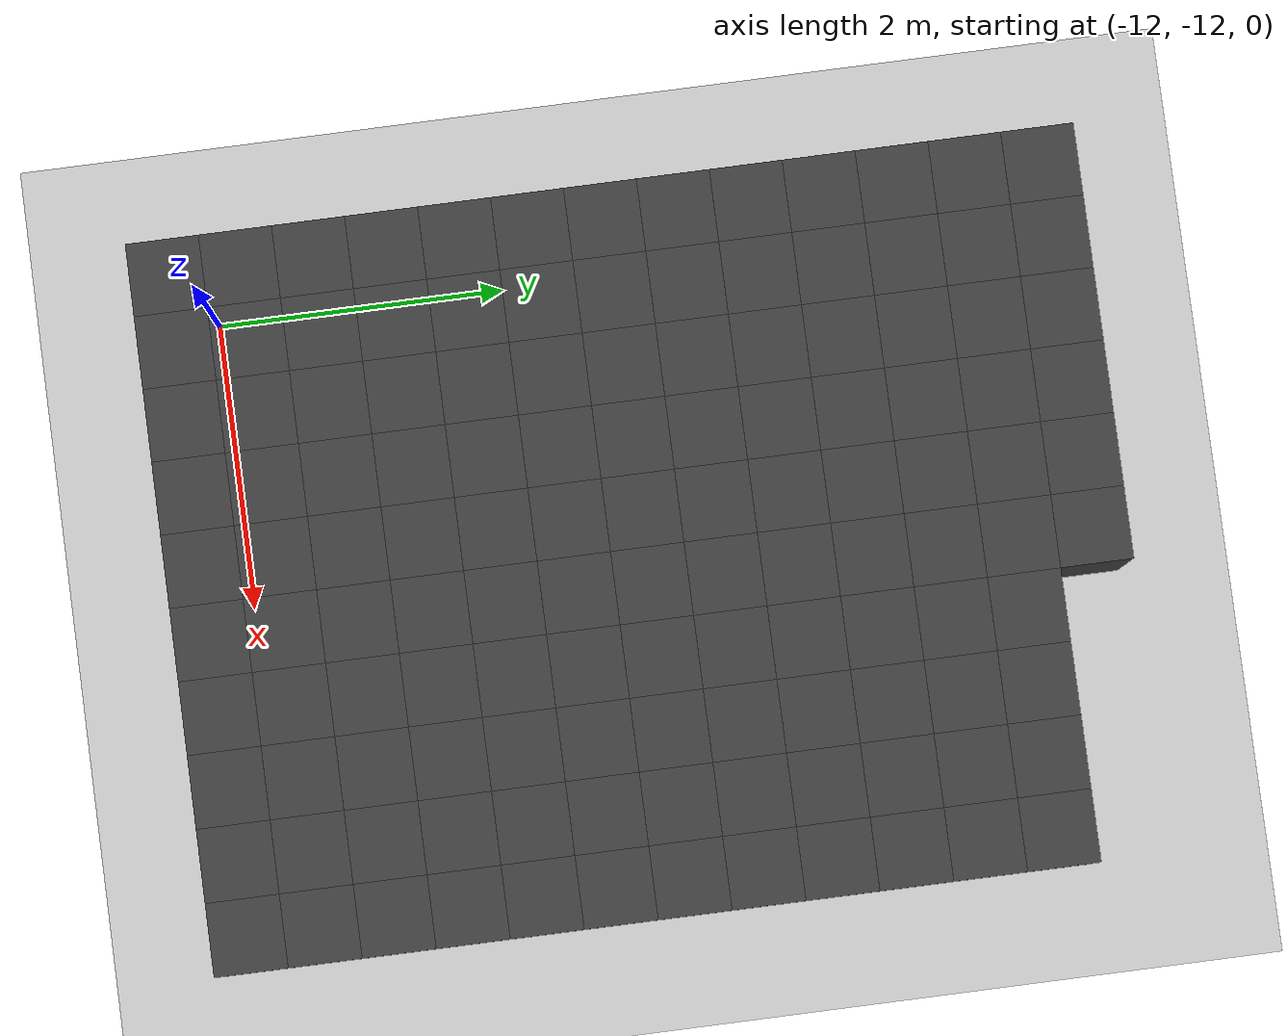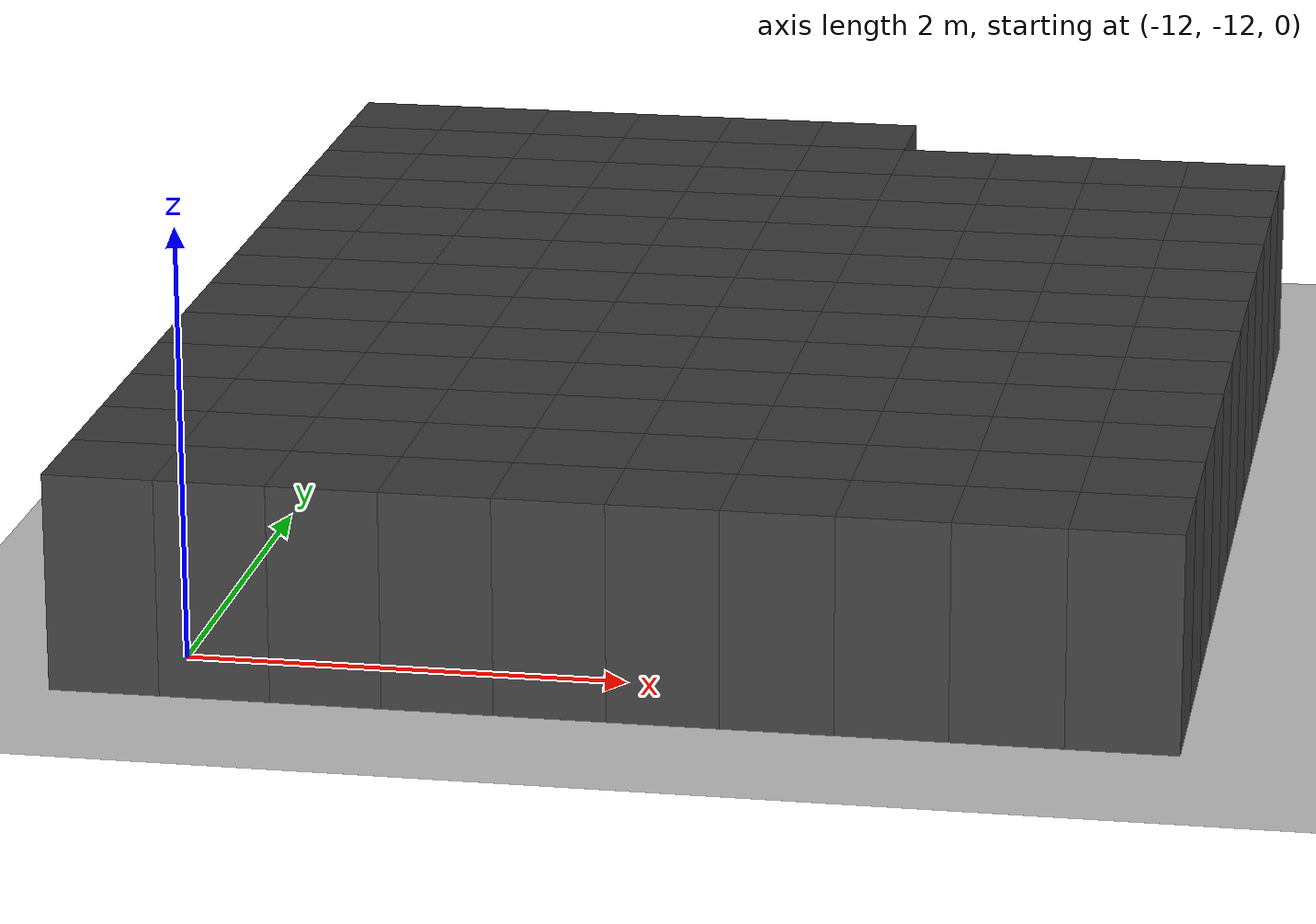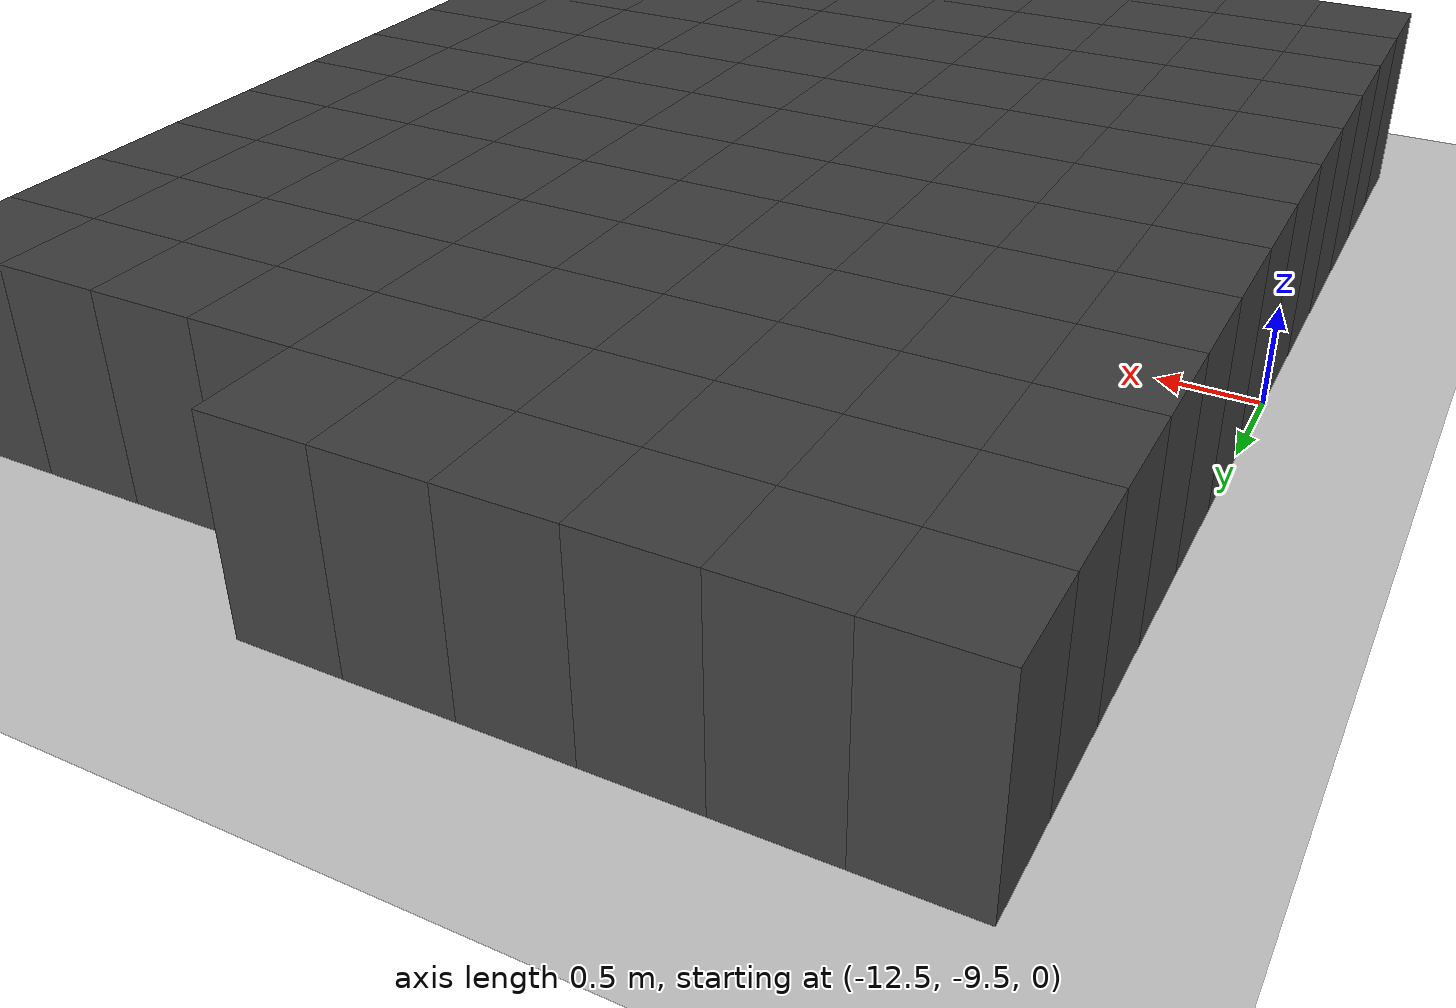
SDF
<sdf version="1.7">
 <world name="map_11779">
  <model name="ground_plane">
   <static>true</static>
   <link name="link">
    <collision name="collision">
     <geometry><plane><normal>0 0 1</normal><size>200 200</size></plane></geometry>
    </collision>
    <visual name="visual">
     <geometry><plane><normal>0 0 1</normal><size>200 200</size></plane></geometry>
     <material><ambient>0.8 0.8 0.8 1</ambient><diffuse>0.8 0.8 0.8 1</diffuse></material>
    </visual>
   </link>
  </model>
  <model name="maze_environment">
   <static>true</static>
   <link name="wall_1535">
    <pose>-12.250 -6.250 0.500 0 0 0</pose>
    <collision name="col"><geometry><box><size>0.5 0.5 1.0</size></box></geometry></collision>
    <visual name="vis">
     <geometry><box><size>0.5 0.5 1.0</size></box></geometry>
     <material><ambient>0.15 0.15 0.15 1</ambient><diffuse>0.25 0.25 0.25 1</diffuse></material>
    </visual>
   </link>
   <link name="wall_1536">
    <pose>-11.750 -6.250 0.500 0 0 0</pose>
    <collision name="col"><geometry><box><size>0.5 0.5 1.0</size></box></geometry></collision>
    <visual name="vis">
     <geometry><box><size>0.5 0.5 1.0</size></box></geometry>
     <material><ambient>0.15 0.15 0.15 1</ambient><diffuse>0.25 0.25 0.25 1</diffuse></material>
    </visual>
   </link>
   <link name="wall_1537">
    <pose>-11.250 -6.250 0.500 0 0 0</pose>
    <collision name="col"><geometry><box><size>0.5 0.5 1.0</size></box></geometry></collision>
    <visual name="vis">
     <geometry><box><size>0.5 0.5 1.0</size></box></geometry>
     <material><ambient>0.15 0.15 0.15 1</ambient><diffuse>0.25 0.25 0.25 1</diffuse></material>
    </visual>
   </link>
   <link name="wall_1538">
    <pose>-10.750 -6.250 0.500 0 0 0</pose>
    <collision name="col"><geometry><box><size>0.5 0.5 1.0</size></box></geometry></collision>
    <visual name="vis">
     <geometry><box><size>0.5 0.5 1.0</size></box></geometry>
     <material><ambient>0.15 0.15 0.15 1</ambient><diffuse>0.25 0.25 0.25 1</diffuse></material>
    </visual>
   </link>
   <link name="wall_1539">
    <pose>-10.250 -6.250 0.500 0 0 0</pose>
    <collision name="col"><geometry><box><size>0.5 0.5 1.0</size></box></geometry></collision>
    <visual name="vis">
     <geometry><box><size>0.5 0.5 1.0</size></box></geometry>
     <material><ambient>0.15 0.15 0.15 1</ambient><diffuse>0.25 0.25 0.25 1</diffuse></material>
    </visual>
   </link>
   <link name="wall_1540">
    <pose>-9.750 -6.250 0.500 0 0 0</pose>
    <collision name="col"><geometry><box><size>0.5 0.5 1.0</size></box></geometry></collision>
    <visual name="vis">
     <geometry><box><size>0.5 0.5 1.0</size></box></geometry>
     <material><ambient>0.15 0.15 0.15 1</ambient><diffuse>0.25 0.25 0.25 1</diffuse></material>
    </visual>
   </link>
   <link name="wall_1584">
    <pose>-12.250 -6.750 0.500 0 0 0</pose>
    <collision name="col"><geometry><box><size>0.5 0.5 1.0</size></box></geometry></collision>
    <visual name="vis">
     <geometry><box><size>0.5 0.5 1.0</size></box></geometry>
     <material><ambient>0.15 0.15 0.15 1</ambient><diffuse>0.25 0.25 0.25 1</diffuse></material>
    </visual>
   </link>
   <link name="wall_1585">
    <pose>-11.750 -6.750 0.500 0 0 0</pose>
    <collision name="col"><geometry><box><size>0.5 0.5 1.0</size></box></geometry></collision>
    <visual name="vis">
     <geometry><box><size>0.5 0.5 1.0</size></box></geometry>
     <material><ambient>0.15 0.15 0.15 1</ambient><diffuse>0.25 0.25 0.25 1</diffuse></material>
    </visual>
   </link>
   <link name="wall_1586">
    <pose>-11.250 -6.750 0.500 0 0 0</pose>
    <collision name="col"><geometry><box><size>0.5 0.5 1.0</size></box></geometry></collision>
    <visual name="vis">
     <geometry><box><size>0.5 0.5 1.0</size></box></geometry>
     <material><ambient>0.15 0.15 0.15 1</ambient><diffuse>0.25 0.25 0.25 1</diffuse></material>
    </visual>
   </link>
   <link name="wall_1587">
    <pose>-10.750 -6.750 0.500 0 0 0</pose>
    <collision name="col"><geometry><box><size>0.5 0.5 1.0</size></box></geometry></collision>
    <visual name="vis">
     <geometry><box><size>0.5 0.5 1.0</size></box></geometry>
     <material><ambient>0.15 0.15 0.15 1</ambient><diffuse>0.25 0.25 0.25 1</diffuse></material>
    </visual>
   </link>
   <link name="wall_1588">
    <pose>-10.250 -6.750 0.500 0 0 0</pose>
    <collision name="col"><geometry><box><size>0.5 0.5 1.0</size></box></geometry></collision>
    <visual name="vis">
     <geometry><box><size>0.5 0.5 1.0</size></box></geometry>
     <material><ambient>0.15 0.15 0.15 1</ambient><diffuse>0.25 0.25 0.25 1</diffuse></material>
    </visual>
   </link>
   <link name="wall_1589">
    <pose>-9.750 -6.750 0.500 0 0 0</pose>
    <collision name="col"><geometry><box><size>0.5 0.5 1.0</size></box></geometry></collision>
    <visual name="vis">
     <geometry><box><size>0.5 0.5 1.0</size></box></geometry>
     <material><ambient>0.15 0.15 0.15 1</ambient><diffuse>0.25 0.25 0.25 1</diffuse></material>
    </visual>
   </link>
   <link name="wall_1590">
    <pose>-9.250 -6.750 0.500 0 0 0</pose>
    <collision name="col"><geometry><box><size>0.5 0.5 1.0</size></box></geometry></collision>
    <visual name="vis">
     <geometry><box><size>0.5 0.5 1.0</size></box></geometry>
     <material><ambient>0.15 0.15 0.15 1</ambient><diffuse>0.25 0.25 0.25 1</diffuse></material>
    </visual>
   </link>
   <link name="wall_1591">
    <pose>-8.750 -6.750 0.500 0 0 0</pose>
    <collision name="col"><geometry><box><size>0.5 0.5 1.0</size></box></geometry></collision>
    <visual name="vis">
     <geometry><box><size>0.5 0.5 1.0</size></box></geometry>
     <material><ambient>0.15 0.15 0.15 1</ambient><diffuse>0.25 0.25 0.25 1</diffuse></material>
    </visual>
   </link>
   <link name="wall_1592">
    <pose>-8.250 -6.750 0.500 0 0 0</pose>
    <collision name="col"><geometry><box><size>0.5 0.5 1.0</size></box></geometry></collision>
    <visual name="vis">
     <geometry><box><size>0.5 0.5 1.0</size></box></geometry>
     <material><ambient>0.15 0.15 0.15 1</ambient><diffuse>0.25 0.25 0.25 1</diffuse></material>
    </visual>
   </link>
   <link name="wall_1593">
    <pose>-7.750 -6.750 0.500 0 0 0</pose>
    <collision name="col"><geometry><box><size>0.5 0.5 1.0</size></box></geometry></collision>
    <visual name="vis">
     <geometry><box><size>0.5 0.5 1.0</size></box></geometry>
     <material><ambient>0.15 0.15 0.15 1</ambient><diffuse>0.25 0.25 0.25 1</diffuse></material>
    </visual>
   </link>
   <link name="wall_1628">
    <pose>-12.250 -7.250 0.500 0 0 0</pose>
    <collision name="col"><geometry><box><size>0.5 0.5 1.0</size></box></geometry></collision>
    <visual name="vis">
     <geometry><box><size>0.5 0.5 1.0</size></box></geometry>
     <material><ambient>0.15 0.15 0.15 1</ambient><diffuse>0.25 0.25 0.25 1</diffuse></material>
    </visual>
   </link>
   <link name="wall_1629">
    <pose>-11.750 -7.250 0.500 0 0 0</pose>
    <collision name="col"><geometry><box><size>0.5 0.5 1.0</size></box></geometry></collision>
    <visual name="vis">
     <geometry><box><size>0.5 0.5 1.0</size></box></geometry>
     <material><ambient>0.15 0.15 0.15 1</ambient><diffuse>0.25 0.25 0.25 1</diffuse></material>
    </visual>
   </link>
   <link name="wall_1630">
    <pose>-11.250 -7.250 0.500 0 0 0</pose>
    <collision name="col"><geometry><box><size>0.5 0.5 1.0</size></box></geometry></collision>
    <visual name="vis">
     <geometry><box><size>0.5 0.5 1.0</size></box></geometry>
     <material><ambient>0.15 0.15 0.15 1</ambient><diffuse>0.25 0.25 0.25 1</diffuse></material>
    </visual>
   </link>
   <link name="wall_1631">
    <pose>-10.750 -7.250 0.500 0 0 0</pose>
    <collision name="col"><geometry><box><size>0.5 0.5 1.0</size></box></geometry></collision>
    <visual name="vis">
     <geometry><box><size>0.5 0.5 1.0</size></box></geometry>
     <material><ambient>0.15 0.15 0.15 1</ambient><diffuse>0.25 0.25 0.25 1</diffuse></material>
    </visual>
   </link>
   <link name="wall_1632">
    <pose>-10.250 -7.250 0.500 0 0 0</pose>
    <collision name="col"><geometry><box><size>0.5 0.5 1.0</size></box></geometry></collision>
    <visual name="vis">
     <geometry><box><size>0.5 0.5 1.0</size></box></geometry>
     <material><ambient>0.15 0.15 0.15 1</ambient><diffuse>0.25 0.25 0.25 1</diffuse></material>
    </visual>
   </link>
   <link name="wall_1633">
    <pose>-9.750 -7.250 0.500 0 0 0</pose>
    <collision name="col"><geometry><box><size>0.5 0.5 1.0</size></box></geometry></collision>
    <visual name="vis">
     <geometry><box><size>0.5 0.5 1.0</size></box></geometry>
     <material><ambient>0.15 0.15 0.15 1</ambient><diffuse>0.25 0.25 0.25 1</diffuse></material>
    </visual>
   </link>
   <link name="wall_1634">
    <pose>-9.250 -7.250 0.500 0 0 0</pose>
    <collision name="col"><geometry><box><size>0.5 0.5 1.0</size></box></geometry></collision>
    <visual name="vis">
     <geometry><box><size>0.5 0.5 1.0</size></box></geometry>
     <material><ambient>0.15 0.15 0.15 1</ambient><diffuse>0.25 0.25 0.25 1</diffuse></material>
    </visual>
   </link>
   <link name="wall_1635">
    <pose>-8.750 -7.250 0.500 0 0 0</pose>
    <collision name="col"><geometry><box><size>0.5 0.5 1.0</size></box></geometry></collision>
    <visual name="vis">
     <geometry><box><size>0.5 0.5 1.0</size></box></geometry>
     <material><ambient>0.15 0.15 0.15 1</ambient><diffuse>0.25 0.25 0.25 1</diffuse></material>
    </visual>
   </link>
   <link name="wall_1636">
    <pose>-8.250 -7.250 0.500 0 0 0</pose>
    <collision name="col"><geometry><box><size>0.5 0.5 1.0</size></box></geometry></collision>
    <visual name="vis">
     <geometry><box><size>0.5 0.5 1.0</size></box></geometry>
     <material><ambient>0.15 0.15 0.15 1</ambient><diffuse>0.25 0.25 0.25 1</diffuse></material>
    </visual>
   </link>
   <link name="wall_1637">
    <pose>-7.750 -7.250 0.500 0 0 0</pose>
    <collision name="col"><geometry><box><size>0.5 0.5 1.0</size></box></geometry></collision>
    <visual name="vis">
     <geometry><box><size>0.5 0.5 1.0</size></box></geometry>
     <material><ambient>0.15 0.15 0.15 1</ambient><diffuse>0.25 0.25 0.25 1</diffuse></material>
    </visual>
   </link>
   <link name="wall_1672">
    <pose>-12.250 -7.750 0.500 0 0 0</pose>
    <collision name="col"><geometry><box><size>0.5 0.5 1.0</size></box></geometry></collision>
    <visual name="vis">
     <geometry><box><size>0.5 0.5 1.0</size></box></geometry>
     <material><ambient>0.15 0.15 0.15 1</ambient><diffuse>0.25 0.25 0.25 1</diffuse></material>
    </visual>
   </link>
   <link name="wall_1673">
    <pose>-11.750 -7.750 0.500 0 0 0</pose>
    <collision name="col"><geometry><box><size>0.5 0.5 1.0</size></box></geometry></collision>
    <visual name="vis">
     <geometry><box><size>0.5 0.5 1.0</size></box></geometry>
     <material><ambient>0.15 0.15 0.15 1</ambient><diffuse>0.25 0.25 0.25 1</diffuse></material>
    </visual>
   </link>
   <link name="wall_1674">
    <pose>-11.250 -7.750 0.500 0 0 0</pose>
    <collision name="col"><geometry><box><size>0.5 0.5 1.0</size></box></geometry></collision>
    <visual name="vis">
     <geometry><box><size>0.5 0.5 1.0</size></box></geometry>
     <material><ambient>0.15 0.15 0.15 1</ambient><diffuse>0.25 0.25 0.25 1</diffuse></material>
    </visual>
   </link>
   <link name="wall_1675">
    <pose>-10.750 -7.750 0.500 0 0 0</pose>
    <collision name="col"><geometry><box><size>0.5 0.5 1.0</size></box></geometry></collision>
    <visual name="vis">
     <geometry><box><size>0.5 0.5 1.0</size></box></geometry>
     <material><ambient>0.15 0.15 0.15 1</ambient><diffuse>0.25 0.25 0.25 1</diffuse></material>
    </visual>
   </link>
   <link name="wall_1676">
    <pose>-10.250 -7.750 0.500 0 0 0</pose>
    <collision name="col"><geometry><box><size>0.5 0.5 1.0</size></box></geometry></collision>
    <visual name="vis">
     <geometry><box><size>0.5 0.5 1.0</size></box></geometry>
     <material><ambient>0.15 0.15 0.15 1</ambient><diffuse>0.25 0.25 0.25 1</diffuse></material>
    </visual>
   </link>
   <link name="wall_1677">
    <pose>-9.750 -7.750 0.500 0 0 0</pose>
    <collision name="col"><geometry><box><size>0.5 0.5 1.0</size></box></geometry></collision>
    <visual name="vis">
     <geometry><box><size>0.5 0.5 1.0</size></box></geometry>
     <material><ambient>0.15 0.15 0.15 1</ambient><diffuse>0.25 0.25 0.25 1</diffuse></material>
    </visual>
   </link>
   <link name="wall_1678">
    <pose>-9.250 -7.750 0.500 0 0 0</pose>
    <collision name="col"><geometry><box><size>0.5 0.5 1.0</size></box></geometry></collision>
    <visual name="vis">
     <geometry><box><size>0.5 0.5 1.0</size></box></geometry>
     <material><ambient>0.15 0.15 0.15 1</ambient><diffuse>0.25 0.25 0.25 1</diffuse></material>
    </visual>
   </link>
   <link name="wall_1679">
    <pose>-8.750 -7.750 0.500 0 0 0</pose>
    <collision name="col"><geometry><box><size>0.5 0.5 1.0</size></box></geometry></collision>
    <visual name="vis">
     <geometry><box><size>0.5 0.5 1.0</size></box></geometry>
     <material><ambient>0.15 0.15 0.15 1</ambient><diffuse>0.25 0.25 0.25 1</diffuse></material>
    </visual>
   </link>
   <link name="wall_1680">
    <pose>-8.250 -7.750 0.500 0 0 0</pose>
    <collision name="col"><geometry><box><size>0.5 0.5 1.0</size></box></geometry></collision>
    <visual name="vis">
     <geometry><box><size>0.5 0.5 1.0</size></box></geometry>
     <material><ambient>0.15 0.15 0.15 1</ambient><diffuse>0.25 0.25 0.25 1</diffuse></material>
    </visual>
   </link>
   <link name="wall_1681">
    <pose>-7.750 -7.750 0.500 0 0 0</pose>
    <collision name="col"><geometry><box><size>0.5 0.5 1.0</size></box></geometry></collision>
    <visual name="vis">
     <geometry><box><size>0.5 0.5 1.0</size></box></geometry>
     <material><ambient>0.15 0.15 0.15 1</ambient><diffuse>0.25 0.25 0.25 1</diffuse></material>
    </visual>
   </link>
   <link name="wall_1714">
    <pose>-12.250 -8.250 0.500 0 0 0</pose>
    <collision name="col"><geometry><box><size>0.5 0.5 1.0</size></box></geometry></collision>
    <visual name="vis">
     <geometry><box><size>0.5 0.5 1.0</size></box></geometry>
     <material><ambient>0.15 0.15 0.15 1</ambient><diffuse>0.25 0.25 0.25 1</diffuse></material>
    </visual>
   </link>
   <link name="wall_1715">
    <pose>-11.750 -8.250 0.500 0 0 0</pose>
    <collision name="col"><geometry><box><size>0.5 0.5 1.0</size></box></geometry></collision>
    <visual name="vis">
     <geometry><box><size>0.5 0.5 1.0</size></box></geometry>
     <material><ambient>0.15 0.15 0.15 1</ambient><diffuse>0.25 0.25 0.25 1</diffuse></material>
    </visual>
   </link>
   <link name="wall_1716">
    <pose>-11.250 -8.250 0.500 0 0 0</pose>
    <collision name="col"><geometry><box><size>0.5 0.5 1.0</size></box></geometry></collision>
    <visual name="vis">
     <geometry><box><size>0.5 0.5 1.0</size></box></geometry>
     <material><ambient>0.15 0.15 0.15 1</ambient><diffuse>0.25 0.25 0.25 1</diffuse></material>
    </visual>
   </link>
   <link name="wall_1717">
    <pose>-10.750 -8.250 0.500 0 0 0</pose>
    <collision name="col"><geometry><box><size>0.5 0.5 1.0</size></box></geometry></collision>
    <visual name="vis">
     <geometry><box><size>0.5 0.5 1.0</size></box></geometry>
     <material><ambient>0.15 0.15 0.15 1</ambient><diffuse>0.25 0.25 0.25 1</diffuse></material>
    </visual>
   </link>
   <link name="wall_1718">
    <pose>-10.250 -8.250 0.500 0 0 0</pose>
    <collision name="col"><geometry><box><size>0.5 0.5 1.0</size></box></geometry></collision>
    <visual name="vis">
     <geometry><box><size>0.5 0.5 1.0</size></box></geometry>
     <material><ambient>0.15 0.15 0.15 1</ambient><diffuse>0.25 0.25 0.25 1</diffuse></material>
    </visual>
   </link>
   <link name="wall_1719">
    <pose>-9.750 -8.250 0.500 0 0 0</pose>
    <collision name="col"><geometry><box><size>0.5 0.5 1.0</size></box></geometry></collision>
    <visual name="vis">
     <geometry><box><size>0.5 0.5 1.0</size></box></geometry>
     <material><ambient>0.15 0.15 0.15 1</ambient><diffuse>0.25 0.25 0.25 1</diffuse></material>
    </visual>
   </link>
   <link name="wall_1720">
    <pose>-9.250 -8.250 0.500 0 0 0</pose>
    <collision name="col"><geometry><box><size>0.5 0.5 1.0</size></box></geometry></collision>
    <visual name="vis">
     <geometry><box><size>0.5 0.5 1.0</size></box></geometry>
     <material><ambient>0.15 0.15 0.15 1</ambient><diffuse>0.25 0.25 0.25 1</diffuse></material>
    </visual>
   </link>
   <link name="wall_1721">
    <pose>-8.750 -8.250 0.500 0 0 0</pose>
    <collision name="col"><geometry><box><size>0.5 0.5 1.0</size></box></geometry></collision>
    <visual name="vis">
     <geometry><box><size>0.5 0.5 1.0</size></box></geometry>
     <material><ambient>0.15 0.15 0.15 1</ambient><diffuse>0.25 0.25 0.25 1</diffuse></material>
    </visual>
   </link>
   <link name="wall_1722">
    <pose>-8.250 -8.250 0.500 0 0 0</pose>
    <collision name="col"><geometry><box><size>0.5 0.5 1.0</size></box></geometry></collision>
    <visual name="vis">
     <geometry><box><size>0.5 0.5 1.0</size></box></geometry>
     <material><ambient>0.15 0.15 0.15 1</ambient><diffuse>0.25 0.25 0.25 1</diffuse></material>
    </visual>
   </link>
   <link name="wall_1723">
    <pose>-7.750 -8.250 0.500 0 0 0</pose>
    <collision name="col"><geometry><box><size>0.5 0.5 1.0</size></box></geometry></collision>
    <visual name="vis">
     <geometry><box><size>0.5 0.5 1.0</size></box></geometry>
     <material><ambient>0.15 0.15 0.15 1</ambient><diffuse>0.25 0.25 0.25 1</diffuse></material>
    </visual>
   </link>
   <link name="wall_1752">
    <pose>-12.250 -8.750 0.500 0 0 0</pose>
    <collision name="col"><geometry><box><size>0.5 0.5 1.0</size></box></geometry></collision>
    <visual name="vis">
     <geometry><box><size>0.5 0.5 1.0</size></box></geometry>
     <material><ambient>0.15 0.15 0.15 1</ambient><diffuse>0.25 0.25 0.25 1</diffuse></material>
    </visual>
   </link>
   <link name="wall_1753">
    <pose>-11.750 -8.750 0.500 0 0 0</pose>
    <collision name="col"><geometry><box><size>0.5 0.5 1.0</size></box></geometry></collision>
    <visual name="vis">
     <geometry><box><size>0.5 0.5 1.0</size></box></geometry>
     <material><ambient>0.15 0.15 0.15 1</ambient><diffuse>0.25 0.25 0.25 1</diffuse></material>
    </visual>
   </link>
   <link name="wall_1754">
    <pose>-11.250 -8.750 0.500 0 0 0</pose>
    <collision name="col"><geometry><box><size>0.5 0.5 1.0</size></box></geometry></collision>
    <visual name="vis">
     <geometry><box><size>0.5 0.5 1.0</size></box></geometry>
     <material><ambient>0.15 0.15 0.15 1</ambient><diffuse>0.25 0.25 0.25 1</diffuse></material>
    </visual>
   </link>
   <link name="wall_1755">
    <pose>-10.750 -8.750 0.500 0 0 0</pose>
    <collision name="col"><geometry><box><size>0.5 0.5 1.0</size></box></geometry></collision>
    <visual name="vis">
     <geometry><box><size>0.5 0.5 1.0</size></box></geometry>
     <material><ambient>0.15 0.15 0.15 1</ambient><diffuse>0.25 0.25 0.25 1</diffuse></material>
    </visual>
   </link>
   <link name="wall_1756">
    <pose>-10.250 -8.750 0.500 0 0 0</pose>
    <collision name="col"><geometry><box><size>0.5 0.5 1.0</size></box></geometry></collision>
    <visual name="vis">
     <geometry><box><size>0.5 0.5 1.0</size></box></geometry>
     <material><ambient>0.15 0.15 0.15 1</ambient><diffuse>0.25 0.25 0.25 1</diffuse></material>
    </visual>
   </link>
   <link name="wall_1757">
    <pose>-9.750 -8.750 0.500 0 0 0</pose>
    <collision name="col"><geometry><box><size>0.5 0.5 1.0</size></box></geometry></collision>
    <visual name="vis">
     <geometry><box><size>0.5 0.5 1.0</size></box></geometry>
     <material><ambient>0.15 0.15 0.15 1</ambient><diffuse>0.25 0.25 0.25 1</diffuse></material>
    </visual>
   </link>
   <link name="wall_1758">
    <pose>-9.250 -8.750 0.500 0 0 0</pose>
    <collision name="col"><geometry><box><size>0.5 0.5 1.0</size></box></geometry></collision>
    <visual name="vis">
     <geometry><box><size>0.5 0.5 1.0</size></box></geometry>
     <material><ambient>0.15 0.15 0.15 1</ambient><diffuse>0.25 0.25 0.25 1</diffuse></material>
    </visual>
   </link>
   <link name="wall_1759">
    <pose>-8.750 -8.750 0.500 0 0 0</pose>
    <collision name="col"><geometry><box><size>0.5 0.5 1.0</size></box></geometry></collision>
    <visual name="vis">
     <geometry><box><size>0.5 0.5 1.0</size></box></geometry>
     <material><ambient>0.15 0.15 0.15 1</ambient><diffuse>0.25 0.25 0.25 1</diffuse></material>
    </visual>
   </link>
   <link name="wall_1760">
    <pose>-8.250 -8.750 0.500 0 0 0</pose>
    <collision name="col"><geometry><box><size>0.5 0.5 1.0</size></box></geometry></collision>
    <visual name="vis">
     <geometry><box><size>0.5 0.5 1.0</size></box></geometry>
     <material><ambient>0.15 0.15 0.15 1</ambient><diffuse>0.25 0.25 0.25 1</diffuse></material>
    </visual>
   </link>
   <link name="wall_1761">
    <pose>-7.750 -8.750 0.500 0 0 0</pose>
    <collision name="col"><geometry><box><size>0.5 0.5 1.0</size></box></geometry></collision>
    <visual name="vis">
     <geometry><box><size>0.5 0.5 1.0</size></box></geometry>
     <material><ambient>0.15 0.15 0.15 1</ambient><diffuse>0.25 0.25 0.25 1</diffuse></material>
    </visual>
   </link>
   <link name="wall_1787">
    <pose>-12.250 -9.250 0.500 0 0 0</pose>
    <collision name="col"><geometry><box><size>0.5 0.5 1.0</size></box></geometry></collision>
    <visual name="vis">
     <geometry><box><size>0.5 0.5 1.0</size></box></geometry>
     <material><ambient>0.15 0.15 0.15 1</ambient><diffuse>0.25 0.25 0.25 1</diffuse></material>
    </visual>
   </link>
   <link name="wall_1788">
    <pose>-11.750 -9.250 0.500 0 0 0</pose>
    <collision name="col"><geometry><box><size>0.5 0.5 1.0</size></box></geometry></collision>
    <visual name="vis">
     <geometry><box><size>0.5 0.5 1.0</size></box></geometry>
     <material><ambient>0.15 0.15 0.15 1</ambient><diffuse>0.25 0.25 0.25 1</diffuse></material>
    </visual>
   </link>
   <link name="wall_1789">
    <pose>-11.250 -9.250 0.500 0 0 0</pose>
    <collision name="col"><geometry><box><size>0.5 0.5 1.0</size></box></geometry></collision>
    <visual name="vis">
     <geometry><box><size>0.5 0.5 1.0</size></box></geometry>
     <material><ambient>0.15 0.15 0.15 1</ambient><diffuse>0.25 0.25 0.25 1</diffuse></material>
    </visual>
   </link>
   <link name="wall_1790">
    <pose>-10.750 -9.250 0.500 0 0 0</pose>
    <collision name="col"><geometry><box><size>0.5 0.5 1.0</size></box></geometry></collision>
    <visual name="vis">
     <geometry><box><size>0.5 0.5 1.0</size></box></geometry>
     <material><ambient>0.15 0.15 0.15 1</ambient><diffuse>0.25 0.25 0.25 1</diffuse></material>
    </visual>
   </link>
   <link name="wall_1791">
    <pose>-10.250 -9.250 0.500 0 0 0</pose>
    <collision name="col"><geometry><box><size>0.5 0.5 1.0</size></box></geometry></collision>
    <visual name="vis">
     <geometry><box><size>0.5 0.5 1.0</size></box></geometry>
     <material><ambient>0.15 0.15 0.15 1</ambient><diffuse>0.25 0.25 0.25 1</diffuse></material>
    </visual>
   </link>
   <link name="wall_1792">
    <pose>-9.750 -9.250 0.500 0 0 0</pose>
    <collision name="col"><geometry><box><size>0.5 0.5 1.0</size></box></geometry></collision>
    <visual name="vis">
     <geometry><box><size>0.5 0.5 1.0</size></box></geometry>
     <material><ambient>0.15 0.15 0.15 1</ambient><diffuse>0.25 0.25 0.25 1</diffuse></material>
    </visual>
   </link>
   <link name="wall_1793">
    <pose>-9.250 -9.250 0.500 0 0 0</pose>
    <collision name="col"><geometry><box><size>0.5 0.5 1.0</size></box></geometry></collision>
    <visual name="vis">
     <geometry><box><size>0.5 0.5 1.0</size></box></geometry>
     <material><ambient>0.15 0.15 0.15 1</ambient><diffuse>0.25 0.25 0.25 1</diffuse></material>
    </visual>
   </link>
   <link name="wall_1794">
    <pose>-8.750 -9.250 0.500 0 0 0</pose>
    <collision name="col"><geometry><box><size>0.5 0.5 1.0</size></box></geometry></collision>
    <visual name="vis">
     <geometry><box><size>0.5 0.5 1.0</size></box></geometry>
     <material><ambient>0.15 0.15 0.15 1</ambient><diffuse>0.25 0.25 0.25 1</diffuse></material>
    </visual>
   </link>
   <link name="wall_1795">
    <pose>-8.250 -9.250 0.500 0 0 0</pose>
    <collision name="col"><geometry><box><size>0.5 0.5 1.0</size></box></geometry></collision>
    <visual name="vis">
     <geometry><box><size>0.5 0.5 1.0</size></box></geometry>
     <material><ambient>0.15 0.15 0.15 1</ambient><diffuse>0.25 0.25 0.25 1</diffuse></material>
    </visual>
   </link>
   <link name="wall_1796">
    <pose>-7.750 -9.250 0.500 0 0 0</pose>
    <collision name="col"><geometry><box><size>0.5 0.5 1.0</size></box></geometry></collision>
    <visual name="vis">
     <geometry><box><size>0.5 0.5 1.0</size></box></geometry>
     <material><ambient>0.15 0.15 0.15 1</ambient><diffuse>0.25 0.25 0.25 1</diffuse></material>
    </visual>
   </link>
   <link name="wall_1818">
    <pose>-12.250 -9.750 0.500 0 0 0</pose>
    <collision name="col"><geometry><box><size>0.5 0.5 1.0</size></box></geometry></collision>
    <visual name="vis">
     <geometry><box><size>0.5 0.5 1.0</size></box></geometry>
     <material><ambient>0.15 0.15 0.15 1</ambient><diffuse>0.25 0.25 0.25 1</diffuse></material>
    </visual>
   </link>
   <link name="wall_1819">
    <pose>-11.750 -9.750 0.500 0 0 0</pose>
    <collision name="col"><geometry><box><size>0.5 0.5 1.0</size></box></geometry></collision>
    <visual name="vis">
     <geometry><box><size>0.5 0.5 1.0</size></box></geometry>
     <material><ambient>0.15 0.15 0.15 1</ambient><diffuse>0.25 0.25 0.25 1</diffuse></material>
    </visual>
   </link>
   <link name="wall_1820">
    <pose>-11.250 -9.750 0.500 0 0 0</pose>
    <collision name="col"><geometry><box><size>0.5 0.5 1.0</size></box></geometry></collision>
    <visual name="vis">
     <geometry><box><size>0.5 0.5 1.0</size></box></geometry>
     <material><ambient>0.15 0.15 0.15 1</ambient><diffuse>0.25 0.25 0.25 1</diffuse></material>
    </visual>
   </link>
   <link name="wall_1821">
    <pose>-10.750 -9.750 0.500 0 0 0</pose>
    <collision name="col"><geometry><box><size>0.5 0.5 1.0</size></box></geometry></collision>
    <visual name="vis">
     <geometry><box><size>0.5 0.5 1.0</size></box></geometry>
     <material><ambient>0.15 0.15 0.15 1</ambient><diffuse>0.25 0.25 0.25 1</diffuse></material>
    </visual>
   </link>
   <link name="wall_1822">
    <pose>-10.250 -9.750 0.500 0 0 0</pose>
    <collision name="col"><geometry><box><size>0.5 0.5 1.0</size></box></geometry></collision>
    <visual name="vis">
     <geometry><box><size>0.5 0.5 1.0</size></box></geometry>
     <material><ambient>0.15 0.15 0.15 1</ambient><diffuse>0.25 0.25 0.25 1</diffuse></material>
    </visual>
   </link>
   <link name="wall_1823">
    <pose>-9.750 -9.750 0.500 0 0 0</pose>
    <collision name="col"><geometry><box><size>0.5 0.5 1.0</size></box></geometry></collision>
    <visual name="vis">
     <geometry><box><size>0.5 0.5 1.0</size></box></geometry>
     <material><ambient>0.15 0.15 0.15 1</ambient><diffuse>0.25 0.25 0.25 1</diffuse></material>
    </visual>
   </link>
   <link name="wall_1824">
    <pose>-9.250 -9.750 0.500 0 0 0</pose>
    <collision name="col"><geometry><box><size>0.5 0.5 1.0</size></box></geometry></collision>
    <visual name="vis">
     <geometry><box><size>0.5 0.5 1.0</size></box></geometry>
     <material><ambient>0.15 0.15 0.15 1</ambient><diffuse>0.25 0.25 0.25 1</diffuse></material>
    </visual>
   </link>
   <link name="wall_1825">
    <pose>-8.750 -9.750 0.500 0 0 0</pose>
    <collision name="col"><geometry><box><size>0.5 0.5 1.0</size></box></geometry></collision>
    <visual name="vis">
     <geometry><box><size>0.5 0.5 1.0</size></box></geometry>
     <material><ambient>0.15 0.15 0.15 1</ambient><diffuse>0.25 0.25 0.25 1</diffuse></material>
    </visual>
   </link>
   <link name="wall_1826">
    <pose>-8.250 -9.750 0.500 0 0 0</pose>
    <collision name="col"><geometry><box><size>0.5 0.5 1.0</size></box></geometry></collision>
    <visual name="vis">
     <geometry><box><size>0.5 0.5 1.0</size></box></geometry>
     <material><ambient>0.15 0.15 0.15 1</ambient><diffuse>0.25 0.25 0.25 1</diffuse></material>
    </visual>
   </link>
   <link name="wall_1827">
    <pose>-7.750 -9.750 0.500 0 0 0</pose>
    <collision name="col"><geometry><box><size>0.5 0.5 1.0</size></box></geometry></collision>
    <visual name="vis">
     <geometry><box><size>0.5 0.5 1.0</size></box></geometry>
     <material><ambient>0.15 0.15 0.15 1</ambient><diffuse>0.25 0.25 0.25 1</diffuse></material>
    </visual>
   </link>
   <link name="wall_1849">
    <pose>-12.250 -10.250 0.500 0 0 0</pose>
    <collision name="col"><geometry><box><size>0.5 0.5 1.0</size></box></geometry></collision>
    <visual name="vis">
     <geometry><box><size>0.5 0.5 1.0</size></box></geometry>
     <material><ambient>0.15 0.15 0.15 1</ambient><diffuse>0.25 0.25 0.25 1</diffuse></material>
    </visual>
   </link>
   <link name="wall_1850">
    <pose>-11.750 -10.250 0.500 0 0 0</pose>
    <collision name="col"><geometry><box><size>0.5 0.5 1.0</size></box></geometry></collision>
    <visual name="vis">
     <geometry><box><size>0.5 0.5 1.0</size></box></geometry>
     <material><ambient>0.15 0.15 0.15 1</ambient><diffuse>0.25 0.25 0.25 1</diffuse></material>
    </visual>
   </link>
   <link name="wall_1851">
    <pose>-11.250 -10.250 0.500 0 0 0</pose>
    <collision name="col"><geometry><box><size>0.5 0.5 1.0</size></box></geometry></collision>
    <visual name="vis">
     <geometry><box><size>0.5 0.5 1.0</size></box></geometry>
     <material><ambient>0.15 0.15 0.15 1</ambient><diffuse>0.25 0.25 0.25 1</diffuse></material>
    </visual>
   </link>
   <link name="wall_1852">
    <pose>-10.750 -10.250 0.500 0 0 0</pose>
    <collision name="col"><geometry><box><size>0.5 0.5 1.0</size></box></geometry></collision>
    <visual name="vis">
     <geometry><box><size>0.5 0.5 1.0</size></box></geometry>
     <material><ambient>0.15 0.15 0.15 1</ambient><diffuse>0.25 0.25 0.25 1</diffuse></material>
    </visual>
   </link>
   <link name="wall_1853">
    <pose>-10.250 -10.250 0.500 0 0 0</pose>
    <collision name="col"><geometry><box><size>0.5 0.5 1.0</size></box></geometry></collision>
    <visual name="vis">
     <geometry><box><size>0.5 0.5 1.0</size></box></geometry>
     <material><ambient>0.15 0.15 0.15 1</ambient><diffuse>0.25 0.25 0.25 1</diffuse></material>
    </visual>
   </link>
   <link name="wall_1854">
    <pose>-9.750 -10.250 0.500 0 0 0</pose>
    <collision name="col"><geometry><box><size>0.5 0.5 1.0</size></box></geometry></collision>
    <visual name="vis">
     <geometry><box><size>0.5 0.5 1.0</size></box></geometry>
     <material><ambient>0.15 0.15 0.15 1</ambient><diffuse>0.25 0.25 0.25 1</diffuse></material>
    </visual>
   </link>
   <link name="wall_1855">
    <pose>-9.250 -10.250 0.500 0 0 0</pose>
    <collision name="col"><geometry><box><size>0.5 0.5 1.0</size></box></geometry></collision>
    <visual name="vis">
     <geometry><box><size>0.5 0.5 1.0</size></box></geometry>
     <material><ambient>0.15 0.15 0.15 1</ambient><diffuse>0.25 0.25 0.25 1</diffuse></material>
    </visual>
   </link>
   <link name="wall_1856">
    <pose>-8.750 -10.250 0.500 0 0 0</pose>
    <collision name="col"><geometry><box><size>0.5 0.5 1.0</size></box></geometry></collision>
    <visual name="vis">
     <geometry><box><size>0.5 0.5 1.0</size></box></geometry>
     <material><ambient>0.15 0.15 0.15 1</ambient><diffuse>0.25 0.25 0.25 1</diffuse></material>
    </visual>
   </link>
   <link name="wall_1857">
    <pose>-8.250 -10.250 0.500 0 0 0</pose>
    <collision name="col"><geometry><box><size>0.5 0.5 1.0</size></box></geometry></collision>
    <visual name="vis">
     <geometry><box><size>0.5 0.5 1.0</size></box></geometry>
     <material><ambient>0.15 0.15 0.15 1</ambient><diffuse>0.25 0.25 0.25 1</diffuse></material>
    </visual>
   </link>
   <link name="wall_1858">
    <pose>-7.750 -10.250 0.500 0 0 0</pose>
    <collision name="col"><geometry><box><size>0.5 0.5 1.0</size></box></geometry></collision>
    <visual name="vis">
     <geometry><box><size>0.5 0.5 1.0</size></box></geometry>
     <material><ambient>0.15 0.15 0.15 1</ambient><diffuse>0.25 0.25 0.25 1</diffuse></material>
    </visual>
   </link>
   <link name="wall_1873">
    <pose>-12.250 -10.750 0.500 0 0 0</pose>
    <collision name="col"><geometry><box><size>0.5 0.5 1.0</size></box></geometry></collision>
    <visual name="vis">
     <geometry><box><size>0.5 0.5 1.0</size></box></geometry>
     <material><ambient>0.15 0.15 0.15 1</ambient><diffuse>0.25 0.25 0.25 1</diffuse></material>
    </visual>
   </link>
   <link name="wall_1874">
    <pose>-11.750 -10.750 0.500 0 0 0</pose>
    <collision name="col"><geometry><box><size>0.5 0.5 1.0</size></box></geometry></collision>
    <visual name="vis">
     <geometry><box><size>0.5 0.5 1.0</size></box></geometry>
     <material><ambient>0.15 0.15 0.15 1</ambient><diffuse>0.25 0.25 0.25 1</diffuse></material>
    </visual>
   </link>
   <link name="wall_1875">
    <pose>-11.250 -10.750 0.500 0 0 0</pose>
    <collision name="col"><geometry><box><size>0.5 0.5 1.0</size></box></geometry></collision>
    <visual name="vis">
     <geometry><box><size>0.5 0.5 1.0</size></box></geometry>
     <material><ambient>0.15 0.15 0.15 1</ambient><diffuse>0.25 0.25 0.25 1</diffuse></material>
    </visual>
   </link>
   <link name="wall_1876">
    <pose>-10.750 -10.750 0.500 0 0 0</pose>
    <collision name="col"><geometry><box><size>0.5 0.5 1.0</size></box></geometry></collision>
    <visual name="vis">
     <geometry><box><size>0.5 0.5 1.0</size></box></geometry>
     <material><ambient>0.15 0.15 0.15 1</ambient><diffuse>0.25 0.25 0.25 1</diffuse></material>
    </visual>
   </link>
   <link name="wall_1877">
    <pose>-10.250 -10.750 0.500 0 0 0</pose>
    <collision name="col"><geometry><box><size>0.5 0.5 1.0</size></box></geometry></collision>
    <visual name="vis">
     <geometry><box><size>0.5 0.5 1.0</size></box></geometry>
     <material><ambient>0.15 0.15 0.15 1</ambient><diffuse>0.25 0.25 0.25 1</diffuse></material>
    </visual>
   </link>
   <link name="wall_1878">
    <pose>-9.750 -10.750 0.500 0 0 0</pose>
    <collision name="col"><geometry><box><size>0.5 0.5 1.0</size></box></geometry></collision>
    <visual name="vis">
     <geometry><box><size>0.5 0.5 1.0</size></box></geometry>
     <material><ambient>0.15 0.15 0.15 1</ambient><diffuse>0.25 0.25 0.25 1</diffuse></material>
    </visual>
   </link>
   <link name="wall_1879">
    <pose>-9.250 -10.750 0.500 0 0 0</pose>
    <collision name="col"><geometry><box><size>0.5 0.5 1.0</size></box></geometry></collision>
    <visual name="vis">
     <geometry><box><size>0.5 0.5 1.0</size></box></geometry>
     <material><ambient>0.15 0.15 0.15 1</ambient><diffuse>0.25 0.25 0.25 1</diffuse></material>
    </visual>
   </link>
   <link name="wall_1880">
    <pose>-8.750 -10.750 0.500 0 0 0</pose>
    <collision name="col"><geometry><box><size>0.5 0.5 1.0</size></box></geometry></collision>
    <visual name="vis">
     <geometry><box><size>0.5 0.5 1.0</size></box></geometry>
     <material><ambient>0.15 0.15 0.15 1</ambient><diffuse>0.25 0.25 0.25 1</diffuse></material>
    </visual>
   </link>
   <link name="wall_1881">
    <pose>-8.250 -10.750 0.500 0 0 0</pose>
    <collision name="col"><geometry><box><size>0.5 0.5 1.0</size></box></geometry></collision>
    <visual name="vis">
     <geometry><box><size>0.5 0.5 1.0</size></box></geometry>
     <material><ambient>0.15 0.15 0.15 1</ambient><diffuse>0.25 0.25 0.25 1</diffuse></material>
    </visual>
   </link>
   <link name="wall_1882">
    <pose>-7.750 -10.750 0.500 0 0 0</pose>
    <collision name="col"><geometry><box><size>0.5 0.5 1.0</size></box></geometry></collision>
    <visual name="vis">
     <geometry><box><size>0.5 0.5 1.0</size></box></geometry>
     <material><ambient>0.15 0.15 0.15 1</ambient><diffuse>0.25 0.25 0.25 1</diffuse></material>
    </visual>
   </link>
   <link name="wall_1899">
    <pose>-12.250 -11.250 0.500 0 0 0</pose>
    <collision name="col"><geometry><box><size>0.5 0.5 1.0</size></box></geometry></collision>
    <visual name="vis">
     <geometry><box><size>0.5 0.5 1.0</size></box></geometry>
     <material><ambient>0.15 0.15 0.15 1</ambient><diffuse>0.25 0.25 0.25 1</diffuse></material>
    </visual>
   </link>
   <link name="wall_1900">
    <pose>-11.750 -11.250 0.500 0 0 0</pose>
    <collision name="col"><geometry><box><size>0.5 0.5 1.0</size></box></geometry></collision>
    <visual name="vis">
     <geometry><box><size>0.5 0.5 1.0</size></box></geometry>
     <material><ambient>0.15 0.15 0.15 1</ambient><diffuse>0.25 0.25 0.25 1</diffuse></material>
    </visual>
   </link>
   <link name="wall_1901">
    <pose>-11.250 -11.250 0.500 0 0 0</pose>
    <collision name="col"><geometry><box><size>0.5 0.5 1.0</size></box></geometry></collision>
    <visual name="vis">
     <geometry><box><size>0.5 0.5 1.0</size></box></geometry>
     <material><ambient>0.15 0.15 0.15 1</ambient><diffuse>0.25 0.25 0.25 1</diffuse></material>
    </visual>
   </link>
   <link name="wall_1902">
    <pose>-10.750 -11.250 0.500 0 0 0</pose>
    <collision name="col"><geometry><box><size>0.5 0.5 1.0</size></box></geometry></collision>
    <visual name="vis">
     <geometry><box><size>0.5 0.5 1.0</size></box></geometry>
     <material><ambient>0.15 0.15 0.15 1</ambient><diffuse>0.25 0.25 0.25 1</diffuse></material>
    </visual>
   </link>
   <link name="wall_1903">
    <pose>-10.250 -11.250 0.500 0 0 0</pose>
    <collision name="col"><geometry><box><size>0.5 0.5 1.0</size></box></geometry></collision>
    <visual name="vis">
     <geometry><box><size>0.5 0.5 1.0</size></box></geometry>
     <material><ambient>0.15 0.15 0.15 1</ambient><diffuse>0.25 0.25 0.25 1</diffuse></material>
    </visual>
   </link>
   <link name="wall_1904">
    <pose>-9.750 -11.250 0.500 0 0 0</pose>
    <collision name="col"><geometry><box><size>0.5 0.5 1.0</size></box></geometry></collision>
    <visual name="vis">
     <geometry><box><size>0.5 0.5 1.0</size></box></geometry>
     <material><ambient>0.15 0.15 0.15 1</ambient><diffuse>0.25 0.25 0.25 1</diffuse></material>
    </visual>
   </link>
   <link name="wall_1905">
    <pose>-9.250 -11.250 0.500 0 0 0</pose>
    <collision name="col"><geometry><box><size>0.5 0.5 1.0</size></box></geometry></collision>
    <visual name="vis">
     <geometry><box><size>0.5 0.5 1.0</size></box></geometry>
     <material><ambient>0.15 0.15 0.15 1</ambient><diffuse>0.25 0.25 0.25 1</diffuse></material>
    </visual>
   </link>
   <link name="wall_1906">
    <pose>-8.750 -11.250 0.500 0 0 0</pose>
    <collision name="col"><geometry><box><size>0.5 0.5 1.0</size></box></geometry></collision>
    <visual name="vis">
     <geometry><box><size>0.5 0.5 1.0</size></box></geometry>
     <material><ambient>0.15 0.15 0.15 1</ambient><diffuse>0.25 0.25 0.25 1</diffuse></material>
    </visual>
   </link>
   <link name="wall_1907">
    <pose>-8.250 -11.250 0.500 0 0 0</pose>
    <collision name="col"><geometry><box><size>0.5 0.5 1.0</size></box></geometry></collision>
    <visual name="vis">
     <geometry><box><size>0.5 0.5 1.0</size></box></geometry>
     <material><ambient>0.15 0.15 0.15 1</ambient><diffuse>0.25 0.25 0.25 1</diffuse></material>
    </visual>
   </link>
   <link name="wall_1908">
    <pose>-7.750 -11.250 0.500 0 0 0</pose>
    <collision name="col"><geometry><box><size>0.5 0.5 1.0</size></box></geometry></collision>
    <visual name="vis">
     <geometry><box><size>0.5 0.5 1.0</size></box></geometry>
     <material><ambient>0.15 0.15 0.15 1</ambient><diffuse>0.25 0.25 0.25 1</diffuse></material>
    </visual>
   </link>
   <link name="wall_1935">
    <pose>-12.250 -11.750 0.500 0 0 0</pose>
    <collision name="col"><geometry><box><size>0.5 0.5 1.0</size></box></geometry></collision>
    <visual name="vis">
     <geometry><box><size>0.5 0.5 1.0</size></box></geometry>
     <material><ambient>0.15 0.15 0.15 1</ambient><diffuse>0.25 0.25 0.25 1</diffuse></material>
    </visual>
   </link>
   <link name="wall_1936">
    <pose>-11.750 -11.750 0.500 0 0 0</pose>
    <collision name="col"><geometry><box><size>0.5 0.5 1.0</size></box></geometry></collision>
    <visual name="vis">
     <geometry><box><size>0.5 0.5 1.0</size></box></geometry>
     <material><ambient>0.15 0.15 0.15 1</ambient><diffuse>0.25 0.25 0.25 1</diffuse></material>
    </visual>
   </link>
   <link name="wall_1937">
    <pose>-11.250 -11.750 0.500 0 0 0</pose>
    <collision name="col"><geometry><box><size>0.5 0.5 1.0</size></box></geometry></collision>
    <visual name="vis">
     <geometry><box><size>0.5 0.5 1.0</size></box></geometry>
     <material><ambient>0.15 0.15 0.15 1</ambient><diffuse>0.25 0.25 0.25 1</diffuse></material>
    </visual>
   </link>
   <link name="wall_1938">
    <pose>-10.750 -11.750 0.500 0 0 0</pose>
    <collision name="col"><geometry><box><size>0.5 0.5 1.0</size></box></geometry></collision>
    <visual name="vis">
     <geometry><box><size>0.5 0.5 1.0</size></box></geometry>
     <material><ambient>0.15 0.15 0.15 1</ambient><diffuse>0.25 0.25 0.25 1</diffuse></material>
    </visual>
   </link>
   <link name="wall_1939">
    <pose>-10.250 -11.750 0.500 0 0 0</pose>
    <collision name="col"><geometry><box><size>0.5 0.5 1.0</size></box></geometry></collision>
    <visual name="vis">
     <geometry><box><size>0.5 0.5 1.0</size></box></geometry>
     <material><ambient>0.15 0.15 0.15 1</ambient><diffuse>0.25 0.25 0.25 1</diffuse></material>
    </visual>
   </link>
   <link name="wall_1940">
    <pose>-9.750 -11.750 0.500 0 0 0</pose>
    <collision name="col"><geometry><box><size>0.5 0.5 1.0</size></box></geometry></collision>
    <visual name="vis">
     <geometry><box><size>0.5 0.5 1.0</size></box></geometry>
     <material><ambient>0.15 0.15 0.15 1</ambient><diffuse>0.25 0.25 0.25 1</diffuse></material>
    </visual>
   </link>
   <link name="wall_1941">
    <pose>-9.250 -11.750 0.500 0 0 0</pose>
    <collision name="col"><geometry><box><size>0.5 0.5 1.0</size></box></geometry></collision>
    <visual name="vis">
     <geometry><box><size>0.5 0.5 1.0</size></box></geometry>
     <material><ambient>0.15 0.15 0.15 1</ambient><diffuse>0.25 0.25 0.25 1</diffuse></material>
    </visual>
   </link>
   <link name="wall_1942">
    <pose>-8.750 -11.750 0.500 0 0 0</pose>
    <collision name="col"><geometry><box><size>0.5 0.5 1.0</size></box></geometry></collision>
    <visual name="vis">
     <geometry><box><size>0.5 0.5 1.0</size></box></geometry>
     <material><ambient>0.15 0.15 0.15 1</ambient><diffuse>0.25 0.25 0.25 1</diffuse></material>
    </visual>
   </link>
   <link name="wall_1943">
    <pose>-8.250 -11.750 0.500 0 0 0</pose>
    <collision name="col"><geometry><box><size>0.5 0.5 1.0</size></box></geometry></collision>
    <visual name="vis">
     <geometry><box><size>0.5 0.5 1.0</size></box></geometry>
     <material><ambient>0.15 0.15 0.15 1</ambient><diffuse>0.25 0.25 0.25 1</diffuse></material>
    </visual>
   </link>
   <link name="wall_1944">
    <pose>-7.750 -11.750 0.500 0 0 0</pose>
    <collision name="col"><geometry><box><size>0.5 0.5 1.0</size></box></geometry></collision>
    <visual name="vis">
     <geometry><box><size>0.5 0.5 1.0</size></box></geometry>
     <material><ambient>0.15 0.15 0.15 1</ambient><diffuse>0.25 0.25 0.25 1</diffuse></material>
    </visual>
   </link>
   <link name="wall_1971">
    <pose>-12.250 -12.250 0.500 0 0 0</pose>
    <collision name="col"><geometry><box><size>0.5 0.5 1.0</size></box></geometry></collision>
    <visual name="vis">
     <geometry><box><size>0.5 0.5 1.0</size></box></geometry>
     <material><ambient>0.15 0.15 0.15 1</ambient><diffuse>0.25 0.25 0.25 1</diffuse></material>
    </visual>
   </link>
   <link name="wall_1972">
    <pose>-11.750 -12.250 0.500 0 0 0</pose>
    <collision name="col"><geometry><box><size>0.5 0.5 1.0</size></box></geometry></collision>
    <visual name="vis">
     <geometry><box><size>0.5 0.5 1.0</size></box></geometry>
     <material><ambient>0.15 0.15 0.15 1</ambient><diffuse>0.25 0.25 0.25 1</diffuse></material>
    </visual>
   </link>
   <link name="wall_1973">
    <pose>-11.250 -12.250 0.500 0 0 0</pose>
    <collision name="col"><geometry><box><size>0.5 0.5 1.0</size></box></geometry></collision>
    <visual name="vis">
     <geometry><box><size>0.5 0.5 1.0</size></box></geometry>
     <material><ambient>0.15 0.15 0.15 1</ambient><diffuse>0.25 0.25 0.25 1</diffuse></material>
    </visual>
   </link>
   <link name="wall_1974">
    <pose>-10.750 -12.250 0.500 0 0 0</pose>
    <collision name="col"><geometry><box><size>0.5 0.5 1.0</size></box></geometry></collision>
    <visual name="vis">
     <geometry><box><size>0.5 0.5 1.0</size></box></geometry>
     <material><ambient>0.15 0.15 0.15 1</ambient><diffuse>0.25 0.25 0.25 1</diffuse></material>
    </visual>
   </link>
   <link name="wall_1975">
    <pose>-10.250 -12.250 0.500 0 0 0</pose>
    <collision name="col"><geometry><box><size>0.5 0.5 1.0</size></box></geometry></collision>
    <visual name="vis">
     <geometry><box><size>0.5 0.5 1.0</size></box></geometry>
     <material><ambient>0.15 0.15 0.15 1</ambient><diffuse>0.25 0.25 0.25 1</diffuse></material>
    </visual>
   </link>
   <link name="wall_1976">
    <pose>-9.750 -12.250 0.500 0 0 0</pose>
    <collision name="col"><geometry><box><size>0.5 0.5 1.0</size></box></geometry></collision>
    <visual name="vis">
     <geometry><box><size>0.5 0.5 1.0</size></box></geometry>
     <material><ambient>0.15 0.15 0.15 1</ambient><diffuse>0.25 0.25 0.25 1</diffuse></material>
    </visual>
   </link>
   <link name="wall_1977">
    <pose>-9.250 -12.250 0.500 0 0 0</pose>
    <collision name="col"><geometry><box><size>0.5 0.5 1.0</size></box></geometry></collision>
    <visual name="vis">
     <geometry><box><size>0.5 0.5 1.0</size></box></geometry>
     <material><ambient>0.15 0.15 0.15 1</ambient><diffuse>0.25 0.25 0.25 1</diffuse></material>
    </visual>
   </link>
   <link name="wall_1978">
    <pose>-8.750 -12.250 0.500 0 0 0</pose>
    <collision name="col"><geometry><box><size>0.5 0.5 1.0</size></box></geometry></collision>
    <visual name="vis">
     <geometry><box><size>0.5 0.5 1.0</size></box></geometry>
     <material><ambient>0.15 0.15 0.15 1</ambient><diffuse>0.25 0.25 0.25 1</diffuse></material>
    </visual>
   </link>
   <link name="wall_1979">
    <pose>-8.250 -12.250 0.500 0 0 0</pose>
    <collision name="col"><geometry><box><size>0.5 0.5 1.0</size></box></geometry></collision>
    <visual name="vis">
     <geometry><box><size>0.5 0.5 1.0</size></box></geometry>
     <material><ambient>0.15 0.15 0.15 1</ambient><diffuse>0.25 0.25 0.25 1</diffuse></material>
    </visual>
   </link>
   <link name="wall_1980">
    <pose>-7.750 -12.250 0.500 0 0 0</pose>
    <collision name="col"><geometry><box><size>0.5 0.5 1.0</size></box></geometry></collision>
    <visual name="vis">
     <geometry><box><size>0.5 0.5 1.0</size></box></geometry>
     <material><ambient>0.15 0.15 0.15 1</ambient><diffuse>0.25 0.25 0.25 1</diffuse></material>
    </visual>
   </link>
  </model>
 </world>
</sdf>
